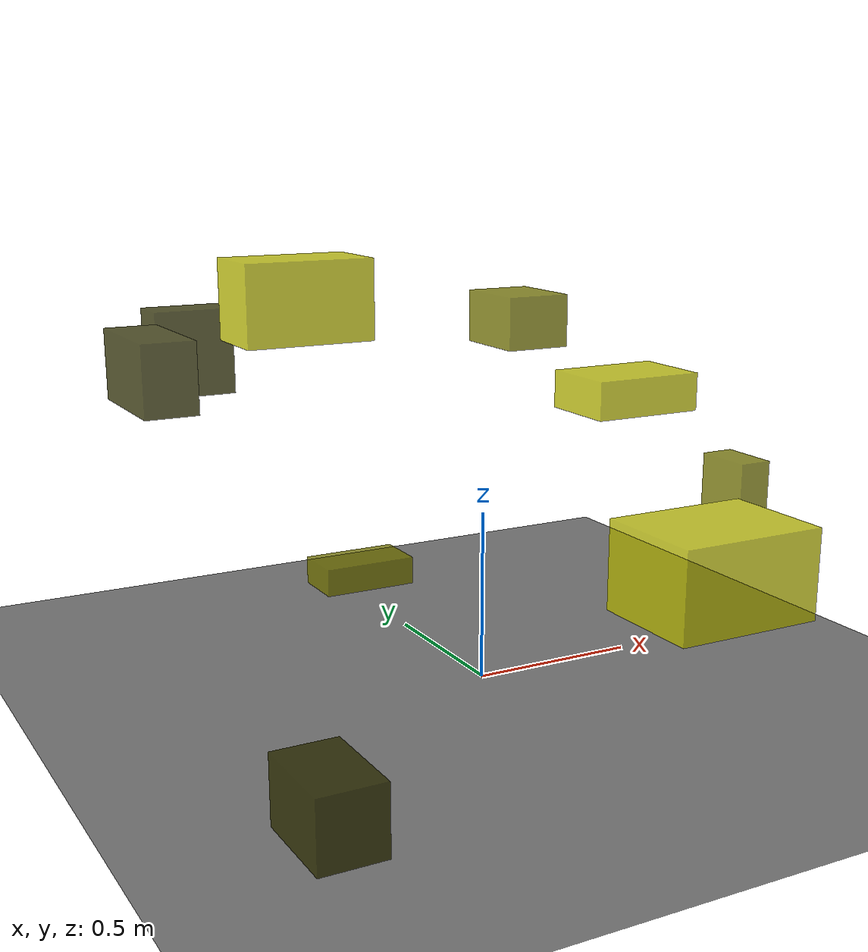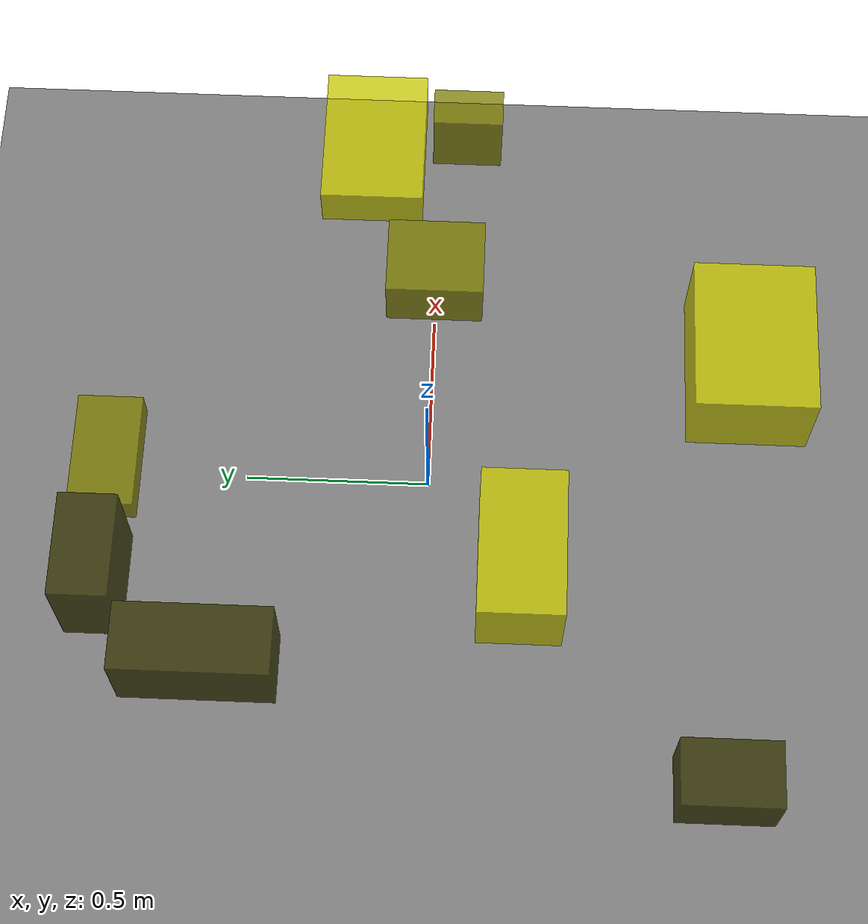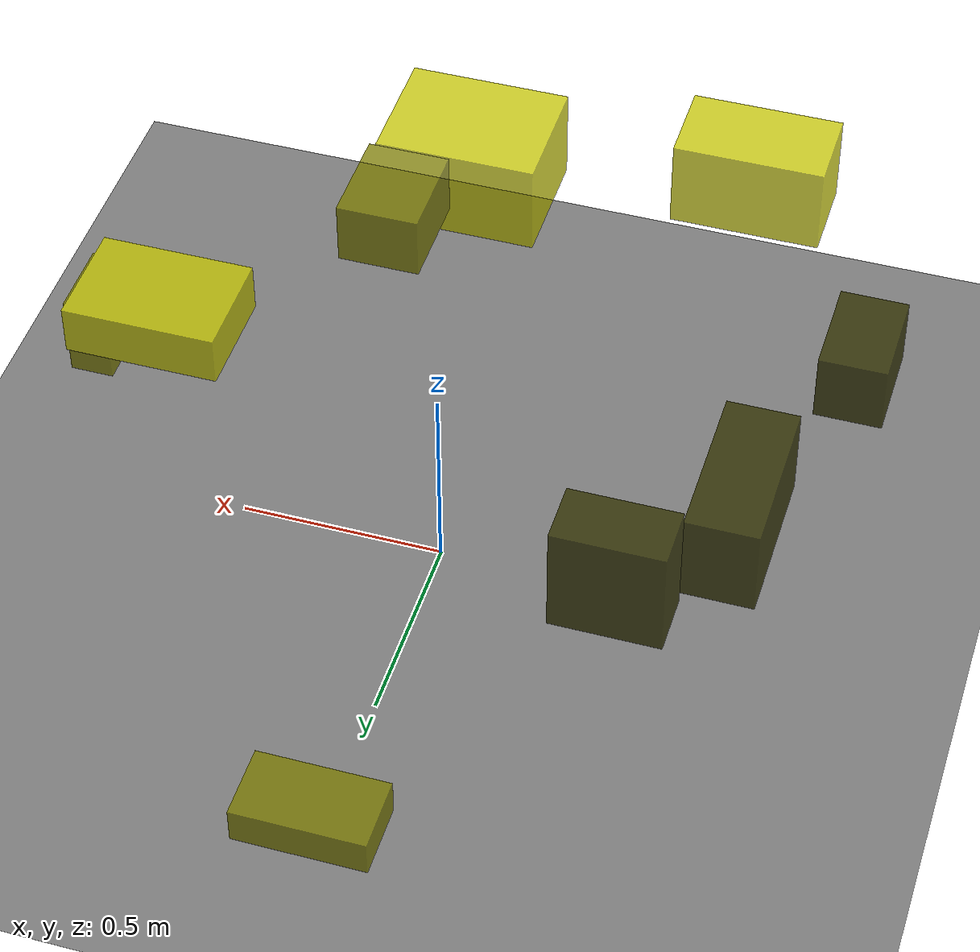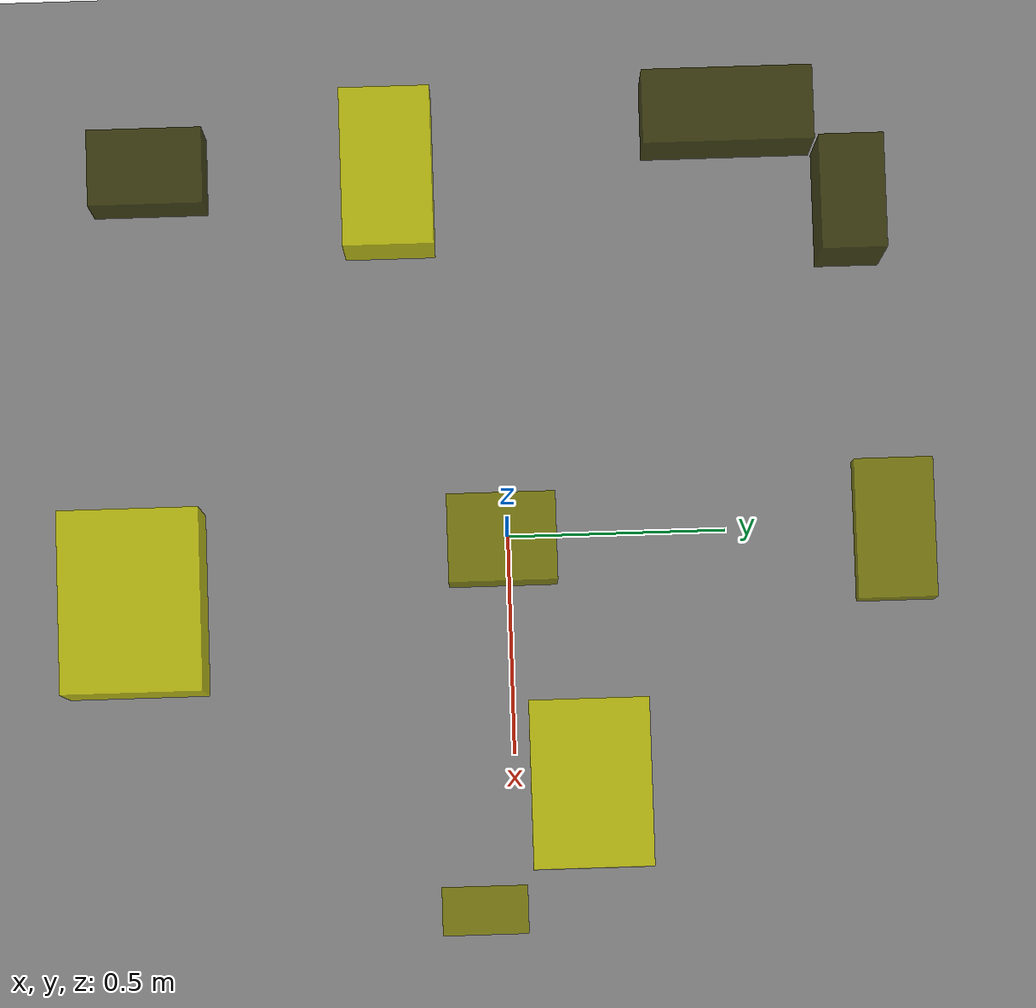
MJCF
<?xml version="1.0"?>
<mujoco model="obstacle_scene">
  <compiler angle="radian" coordinate="local"/>
  <option timestep="0.001" gravity="0 0 -9.81"/>

  <asset>
    <material name="obstacle_mat" rgba="0.8 0.8 0.0 0.8"/>
    <material name="ground_mat" rgba="0.5 0.5 0.5 1"/>
  </asset>

  <worldbody>
    <!-- Ground plane -->
    <geom name="ground" type="plane" size="3 3 0.1" material="ground_mat"/>

    <!-- Obstacles -->
    <body name="obstacle_0" pos="-0.607728 0.735934 0.911154">
      <geom name="obs_0" type="box" size="0.120080 0.067086 0.128520" rgba="0.2 0.2 0.0 0.8"/>
    </body>
    <body name="obstacle_1" pos="0.017725 0.882561 0.078900">
      <geom name="obs_1" type="box" size="0.159686 0.089557 0.046507" rgba="0.5 0.5 0.0 0.8"/>
    </body>
    <body name="obstacle_2" pos="-0.650261 -0.225915 1.170677">
      <geom name="obs_2" type="box" size="0.161766 0.092063 0.098118" rgba="0.8 0.8 0.0 0.8"/>
    </body>
    <body name="obstacle_3" pos="-0.803550 0.484233 0.903765">
      <geom name="obs_3" type="box" size="0.078096 0.178108 0.103260" rgba="0.2 0.2 0.0 0.8"/>
    </body>
    <body name="obstacle_4" pos="0.854440 -0.074841 0.483010">
      <geom name="obs_4" type="box" size="0.051912 0.092416 0.102309" rgba="0.5 0.5 0.0 0.8"/>
    </body>
    <body name="obstacle_5" pos="0.168861 -0.818559 0.535395">
      <geom name="obs_5" type="box" size="0.198422 0.153353 0.117354" rgba="0.8 0.8 0.0 0.8"/>
    </body>
    <body name="obstacle_6" pos="-0.846262 -0.797366 0.143877">
      <geom name="obs_6" type="box" size="0.086982 0.130533 0.092241" rgba="0.2 0.2 0.0 0.8"/>
    </body>
    <body name="obstacle_7" pos="0.096553 -0.014811 1.053756">
      <geom name="obs_7" type="box" size="0.090640 0.111322 0.071160" rgba="0.5 0.5 0.0 0.8"/>
    </body>
    <body name="obstacle_8" pos="0.595161 0.157593 0.778580">
      <geom name="obs_8" type="box" size="0.177025 0.126507 0.058476" rgba="0.8 0.8 0.0 0.8"/>
    </body>
  </worldbody>
</mujoco>
